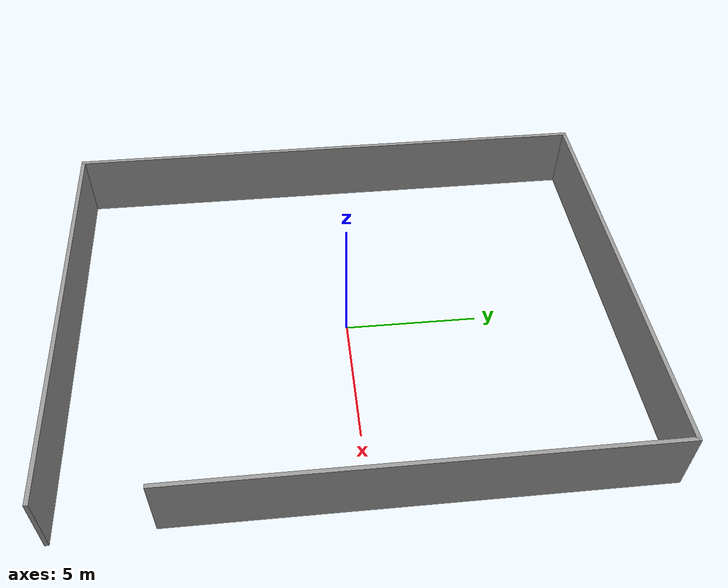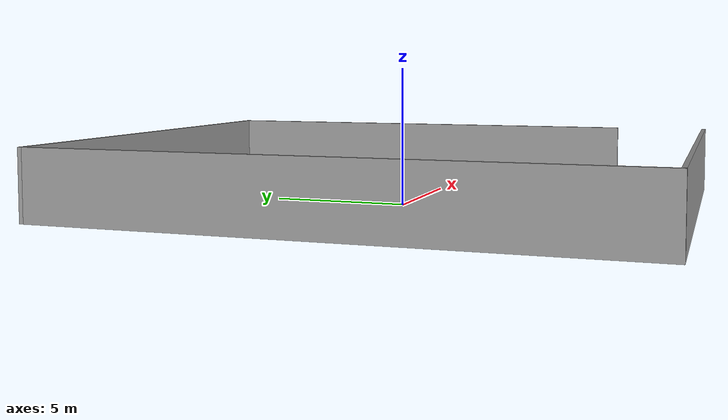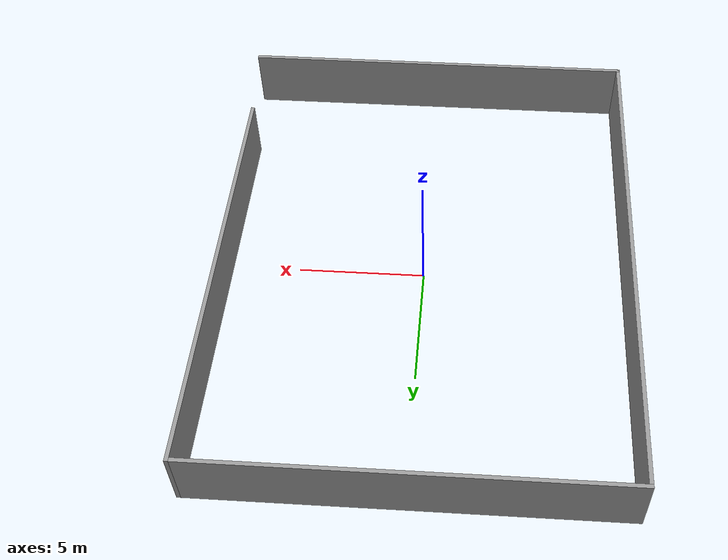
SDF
<?xml version='1.0'?>
<sdf version='1.7'>
  <model name='walls'>
    <pose>0 0 0 0 -0 0</pose>
    <link name='Wall_0'>
      <collision name='Wall_0_Collision'>
        <geometry>
          <box>
            <size>17.25 0.15 2.5</size>
          </box>
        </geometry>
        <pose>0 0 1.25 0 -0 0</pose>
      </collision>
      <visual name='Wall_0_Visual'>
        <pose>0 0 1.25 0 -0 0</pose>
        <geometry>
          <box>
            <size>17.25 0.15 2.5</size>
          </box>
        </geometry>
        <material>
          <script>
            <uri>file://media/materials/scripts/gazebo.material</uri>
            <name>Gazebo/Grey</name>
          </script>
          <ambient>1 1 1 1</ambient>
        </material>
        <meta>
          <layer>0</layer>
        </meta>
      </visual>
      <pose>7.8 1.75 0 0 -0 -1.5708</pose>
    </link>
    <link name='Wall_3'>
      <collision name='Wall_3_Collision'>
        <geometry>
          <box>
            <size>16 0.15 2.5</size>
          </box>
        </geometry>
        <pose>0 0 1.25 0 -0 0</pose>
      </collision>
      <visual name='Wall_3_Visual'>
        <pose>0 0 1.25 0 -0 0</pose>
        <geometry>
          <box>
            <size>16 0.15 2.5</size>
          </box>
        </geometry>
        <material>
          <script>
            <uri>file://media/materials/scripts/gazebo.material</uri>
            <name>Gazebo/Grey</name>
          </script>
          <ambient>1 1 1 1</ambient>
        </material>
        <meta>
          <layer>0</layer>
        </meta>
      </visual>
      <pose>-0.124999 10.3 0 0 -0 3.14159</pose>
    </link>
    <link name='Wall_4'>
      <collision name='Wall_4_Collision'>
        <geometry>
          <box>
            <size>20.75 0.15 2.5</size>
          </box>
        </geometry>
        <pose>0 0 1.25 0 -0 0</pose>
      </collision>
      <visual name='Wall_4_Visual'>
        <pose>0 0 1.25 0 -0 0</pose>
        <geometry>
          <box>
            <size>20.75 0.15 2.5</size>
          </box>
        </geometry>
        <material>
          <script>
            <uri>file://media/materials/scripts/gazebo.material</uri>
            <name>Gazebo/Grey</name>
          </script>
          <ambient>1 1 1 1</ambient>
        </material>
        <meta>
          <layer>0</layer>
        </meta>
      </visual>
      <pose>-8.05 -0 0 0 -0 -1.5708</pose>
    </link>
    <link name='Wall_5'>
      <collision name='Wall_5_Collision'>
        <geometry>
          <box>
            <size>16.25 0.15 2.5</size>
          </box>
        </geometry>
        <pose>0 0 1.25 0 -0 0</pose>
      </collision>
      <visual name='Wall_5_Visual'>
        <pose>0 0 1.25 0 -0 0</pose>
        <geometry>
          <box>
            <size>16.25 0.15 2.5</size>
          </box>
        </geometry>
        <material>
          <script>
            <uri>file://media/materials/scripts/gazebo.material</uri>
            <name>Gazebo/Grey</name>
          </script>
          <ambient>1 1 1 1</ambient>
        </material>
        <meta>
          <layer>0</layer>
        </meta>
      </visual>
      <pose>1e-06 -10.3 0 0 -0 0</pose>
    </link>
    <static>1</static>
  </model>
</sdf>
